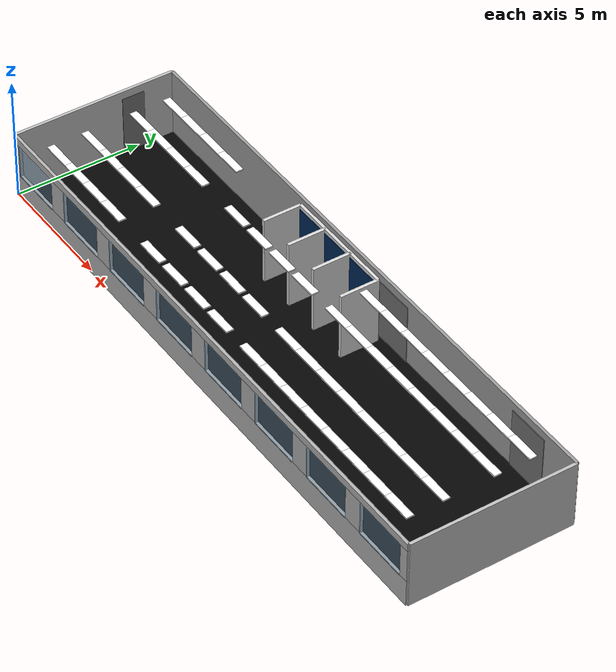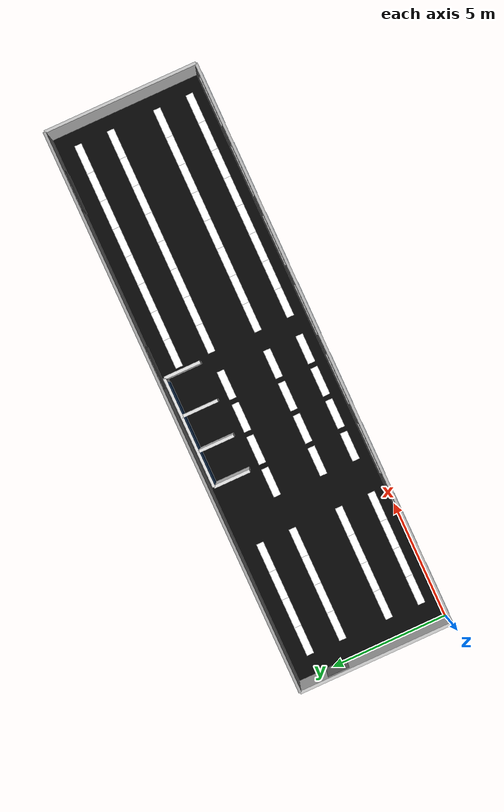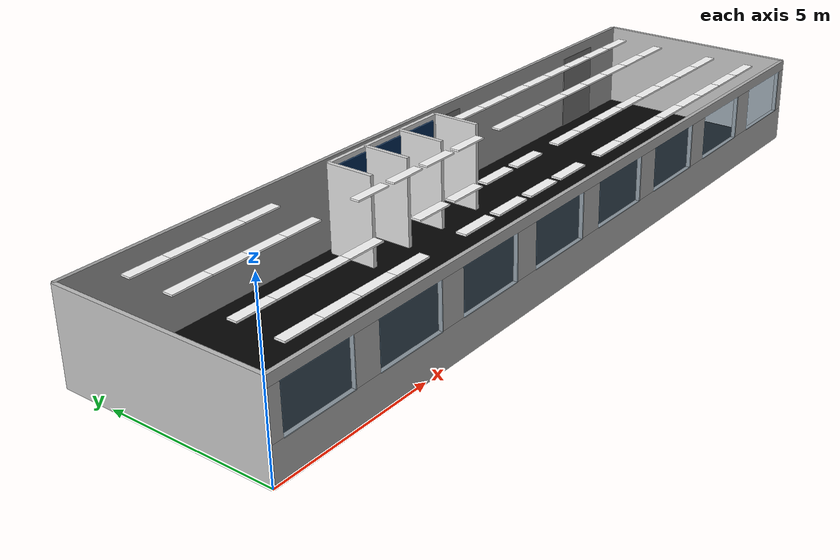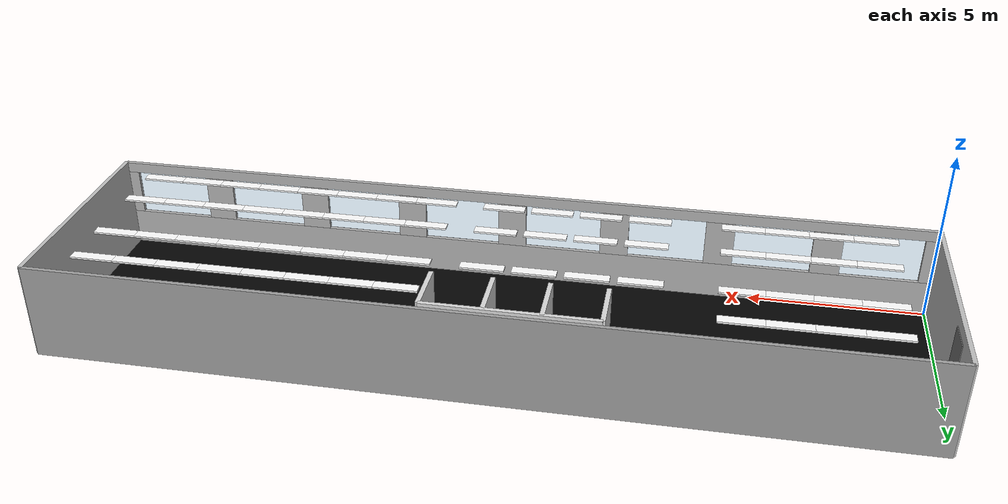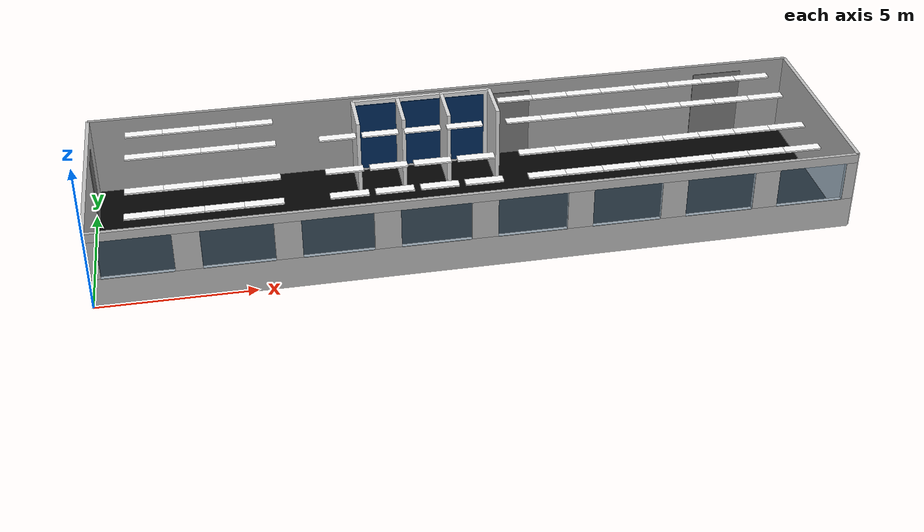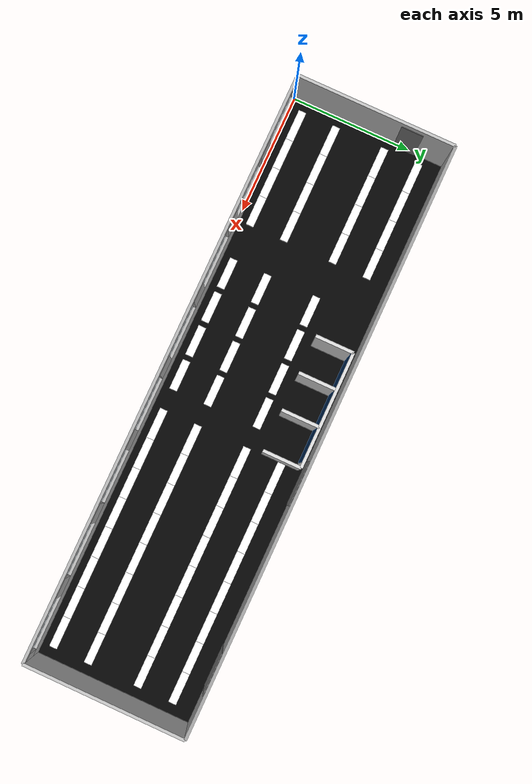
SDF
<?xml version="1.0" ?>
<sdf version="1.10">
  <world name="room_427_reusable">

    <plugin filename="gz-sim-physics-system"
            name="gz::sim::systems::Physics"/>
    <plugin filename="gz-sim-user-commands-system"
            name="gz::sim::systems::UserCommands"/>
    <plugin filename="gz-sim-scene-broadcaster-system"
            name="gz::sim::systems::SceneBroadcaster"/>

    <gravity>0 0 -9.8</gravity>

    <scene>
      <ambient>0.45 0.45 0.45 1</ambient>
      <background>0.75 0.78 0.82 1</background>
      <shadows>true</shadows>
      <grid>false</grid>
    </scene>

    <light name="main_light" type="directional">
      <pose>0 0 10 0 0 0</pose>
      <diffuse>0.6 0.6 0.6 1</diffuse>
      <specular>0.4 0.4 0.4 1</specular>
      <direction>-0.5 0.5 -1</direction>
    </light>

    <gui fullscreen="0">
      <camera name="user_camera">
        <pose>12 -10 8 0.7 0 1.15</pose>
      </camera>
    </gui>

    <include>
      <name>room_427_shell</name>
      <uri>model://moein_room_427_shell</uri>
      <pose>0 0 0 0 0 0</pose>
    </include>

    <include>
      <name>light_z1_r1_c1</name>
      <uri>model://moein_fluorescent_ceiling_light</uri>
      <pose>1.80 0.75 2.70 0 0 0</pose>
    </include>

    <include>
      <name>light_z1_r1_c2</name>
      <uri>model://moein_fluorescent_ceiling_light</uri>
      <pose>1.80 2.15 2.70 0 0 0</pose>
    </include>

    <include>
      <name>light_z1_r1_c3</name>
      <uri>model://moein_fluorescent_ceiling_light</uri>
      <pose>1.80 4.15 2.70 0 0 0</pose>
    </include>

    <include>
      <name>light_z1_r1_c4</name>
      <uri>model://moein_fluorescent_ceiling_light</uri>
      <pose>1.80 5.55 2.70 0 0 0</pose>
    </include>

    <include>
      <name>light_z1_r2_c1</name>
      <uri>model://moein_fluorescent_ceiling_light</uri>
      <pose>3.00 0.75 2.70 0 0 0</pose>
    </include>

    <include>
      <name>light_z1_r2_c2</name>
      <uri>model://moein_fluorescent_ceiling_light</uri>
      <pose>3.00 2.15 2.70 0 0 0</pose>
    </include>

    <include>
      <name>light_z1_r2_c3</name>
      <uri>model://moein_fluorescent_ceiling_light</uri>
      <pose>3.00 4.15 2.70 0 0 0</pose>
    </include>

    <include>
      <name>light_z1_r2_c4</name>
      <uri>model://moein_fluorescent_ceiling_light</uri>
      <pose>3.00 5.55 2.70 0 0 0</pose>
    </include>

    <include>
      <name>light_z1_r3_c1</name>
      <uri>model://moein_fluorescent_ceiling_light</uri>
      <pose>4.20 0.75 2.70 0 0 0</pose>
    </include>

    <include>
      <name>light_z1_r3_c2</name>
      <uri>model://moein_fluorescent_ceiling_light</uri>
      <pose>4.20 2.15 2.70 0 0 0</pose>
    </include>

    <include>
      <name>light_z1_r3_c3</name>
      <uri>model://moein_fluorescent_ceiling_light</uri>
      <pose>4.20 4.15 2.70 0 0 0</pose>
    </include>

    <include>
      <name>light_z1_r3_c4</name>
      <uri>model://moein_fluorescent_ceiling_light</uri>
      <pose>4.20 5.55 2.70 0 0 0</pose>
    </include>

    <include>
      <name>light_z1_r4_c1</name>
      <uri>model://moein_fluorescent_ceiling_light</uri>
      <pose>5.40 0.75 2.70 0 0 0</pose>
    </include>

    <include>
      <name>light_z1_r4_c2</name>
      <uri>model://moein_fluorescent_ceiling_light</uri>
      <pose>5.40 2.15 2.70 0 0 0</pose>
    </include>

    <include>
      <name>light_z1_r4_c3</name>
      <uri>model://moein_fluorescent_ceiling_light</uri>
      <pose>5.40 4.15 2.70 0 0 0</pose>
    </include>

    <include>
      <name>light_z1_r4_c4</name>
      <uri>model://moein_fluorescent_ceiling_light</uri>
      <pose>5.40 5.55 2.70 0 0 0</pose>
    </include>

    <include>
      <name>light_z2_r1_c1</name>
      <uri>model://moein_fluorescent_ceiling_light</uri>
      <pose>8.00 0.75 2.70 0 0 0</pose>
    </include>

    <include>
      <name>light_z2_r1_c2</name>
      <uri>model://moein_fluorescent_ceiling_light</uri>
      <pose>8.00 2.15 2.70 0 0 0</pose>
    </include>

    <include>
      <name>light_z2_r1_c3</name>
      <uri>model://moein_fluorescent_ceiling_light</uri>
      <pose>8.00 4.15 2.70 0 0 0</pose>
    </include>

    <include>
      <name>light_z2_r2_c1</name>
      <uri>model://moein_fluorescent_ceiling_light</uri>
      <pose>9.40 0.75 2.70 0 0 0</pose>
    </include>

    <include>
      <name>light_z2_r2_c2</name>
      <uri>model://moein_fluorescent_ceiling_light</uri>
      <pose>9.40 2.15 2.70 0 0 0</pose>
    </include>

    <include>
      <name>light_z2_r2_c3</name>
      <uri>model://moein_fluorescent_ceiling_light</uri>
      <pose>9.40 4.15 2.70 0 0 0</pose>
    </include>

    <include>
      <name>light_z2_r3_c1</name>
      <uri>model://moein_fluorescent_ceiling_light</uri>
      <pose>10.80 0.75 2.70 0 0 0</pose>
    </include>

    <include>
      <name>light_z2_r3_c2</name>
      <uri>model://moein_fluorescent_ceiling_light</uri>
      <pose>10.80 2.15 2.70 0 0 0</pose>
    </include>

    <include>
      <name>light_z2_r3_c3</name>
      <uri>model://moein_fluorescent_ceiling_light</uri>
      <pose>10.80 4.15 2.70 0 0 0</pose>
    </include>

    <include>
      <name>light_z2_r4_c1</name>
      <uri>model://moein_fluorescent_ceiling_light</uri>
      <pose>12.20 0.75 2.70 0 0 0</pose>
    </include>

    <include>
      <name>light_z2_r4_c2</name>
      <uri>model://moein_fluorescent_ceiling_light</uri>
      <pose>12.20 2.15 2.70 0 0 0</pose>
    </include>

    <include>
      <name>light_z2_r4_c3</name>
      <uri>model://moein_fluorescent_ceiling_light</uri>
      <pose>12.20 4.15 2.70 0 0 0</pose>
    </include>

    <include>
      <name>light_z3_r1_c1</name>
      <uri>model://moein_fluorescent_ceiling_light</uri>
      <pose>14.20 0.75 2.70 0 0 0</pose>
    </include>

    <include>
      <name>light_z3_r1_c2</name>
      <uri>model://moein_fluorescent_ceiling_light</uri>
      <pose>14.20 2.15 2.70 0 0 0</pose>
    </include>

    <include>
      <name>light_z3_r1_c3</name>
      <uri>model://moein_fluorescent_ceiling_light</uri>
      <pose>14.20 4.15 2.70 0 0 0</pose>
    </include>

    <include>
      <name>light_z3_r1_c4</name>
      <uri>model://moein_fluorescent_ceiling_light</uri>
      <pose>14.20 5.55 2.70 0 0 0</pose>
    </include>

    <include>
      <name>light_z3_r2_c1</name>
      <uri>model://moein_fluorescent_ceiling_light</uri>
      <pose>15.40 0.75 2.70 0 0 0</pose>
    </include>

    <include>
      <name>light_z3_r2_c2</name>
      <uri>model://moein_fluorescent_ceiling_light</uri>
      <pose>15.40 2.15 2.70 0 0 0</pose>
    </include>

    <include>
      <name>light_z3_r2_c3</name>
      <uri>model://moein_fluorescent_ceiling_light</uri>
      <pose>15.40 4.15 2.70 0 0 0</pose>
    </include>

    <include>
      <name>light_z3_r2_c4</name>
      <uri>model://moein_fluorescent_ceiling_light</uri>
      <pose>15.40 5.55 2.70 0 0 0</pose>
    </include>

    <include>
      <name>light_z3_r3_c1</name>
      <uri>model://moein_fluorescent_ceiling_light</uri>
      <pose>16.60 0.75 2.70 0 0 0</pose>
    </include>

    <include>
      <name>light_z3_r3_c2</name>
      <uri>model://moein_fluorescent_ceiling_light</uri>
      <pose>16.60 2.15 2.70 0 0 0</pose>
    </include>

    <include>
      <name>light_z3_r3_c3</name>
      <uri>model://moein_fluorescent_ceiling_light</uri>
      <pose>16.60 4.15 2.70 0 0 0</pose>
    </include>

    <include>
      <name>light_z3_r3_c4</name>
      <uri>model://moein_fluorescent_ceiling_light</uri>
      <pose>16.60 5.55 2.70 0 0 0</pose>
    </include>

    <include>
      <name>light_z3_r4_c1</name>
      <uri>model://moein_fluorescent_ceiling_light</uri>
      <pose>17.80 0.75 2.70 0 0 0</pose>
    </include>

    <include>
      <name>light_z3_r4_c2</name>
      <uri>model://moein_fluorescent_ceiling_light</uri>
      <pose>17.80 2.15 2.70 0 0 0</pose>
    </include>

    <include>
      <name>light_z3_r4_c3</name>
      <uri>model://moein_fluorescent_ceiling_light</uri>
      <pose>17.80 4.15 2.70 0 0 0</pose>
    </include>

    <include>
      <name>light_z3_r4_c4</name>
      <uri>model://moein_fluorescent_ceiling_light</uri>
      <pose>17.80 5.55 2.70 0 0 0</pose>
    </include>

    <include>
      <name>light_z3_r5_c1</name>
      <uri>model://moein_fluorescent_ceiling_light</uri>
      <pose>19.00 0.75 2.70 0 0 0</pose>
    </include>

    <include>
      <name>light_z3_r5_c2</name>
      <uri>model://moein_fluorescent_ceiling_light</uri>
      <pose>19.00 2.15 2.70 0 0 0</pose>
    </include>

    <include>
      <name>light_z3_r5_c3</name>
      <uri>model://moein_fluorescent_ceiling_light</uri>
      <pose>19.00 4.15 2.70 0 0 0</pose>
    </include>

    <include>
      <name>light_z3_r5_c4</name>
      <uri>model://moein_fluorescent_ceiling_light</uri>
      <pose>19.00 5.55 2.70 0 0 0</pose>
    </include>

    <include>
      <name>light_z3_r6_c1</name>
      <uri>model://moein_fluorescent_ceiling_light</uri>
      <pose>20.20 0.75 2.70 0 0 0</pose>
    </include>

    <include>
      <name>light_z3_r6_c2</name>
      <uri>model://moein_fluorescent_ceiling_light</uri>
      <pose>20.20 2.15 2.70 0 0 0</pose>
    </include>

    <include>
      <name>light_z3_r6_c3</name>
      <uri>model://moein_fluorescent_ceiling_light</uri>
      <pose>20.20 4.15 2.70 0 0 0</pose>
    </include>

    <include>
      <name>light_z3_r6_c4</name>
      <uri>model://moein_fluorescent_ceiling_light</uri>
      <pose>20.20 5.55 2.70 0 0 0</pose>
    </include>

    <include>
      <name>light_z3_r7_c1</name>
      <uri>model://moein_fluorescent_ceiling_light</uri>
      <pose>21.40 0.75 2.70 0 0 0</pose>
    </include>

    <include>
      <name>light_z3_r7_c2</name>
      <uri>model://moein_fluorescent_ceiling_light</uri>
      <pose>21.40 2.15 2.70 0 0 0</pose>
    </include>

    <include>
      <name>light_z3_r7_c3</name>
      <uri>model://moein_fluorescent_ceiling_light</uri>
      <pose>21.40 4.15 2.70 0 0 0</pose>
    </include>

    <include>
      <name>light_z3_r7_c4</name>
      <uri>model://moein_fluorescent_ceiling_light</uri>
      <pose>21.40 5.55 2.70 0 0 0</pose>
    </include>

    <include>
      <name>light_z3_r8_c1</name>
      <uri>model://moein_fluorescent_ceiling_light</uri>
      <pose>22.60 0.75 2.70 0 0 0</pose>
    </include>

    <include>
      <name>light_z3_r8_c2</name>
      <uri>model://moein_fluorescent_ceiling_light</uri>
      <pose>22.60 2.15 2.70 0 0 0</pose>
    </include>

    <include>
      <name>light_z3_r8_c3</name>
      <uri>model://moein_fluorescent_ceiling_light</uri>
      <pose>22.60 4.15 2.70 0 0 0</pose>
    </include>

    <include>
      <name>light_z3_r8_c4</name>
      <uri>model://moein_fluorescent_ceiling_light</uri>
      <pose>22.60 5.55 2.70 0 0 0</pose>
    </include>

  </world>
</sdf>

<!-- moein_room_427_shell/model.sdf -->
<sdf version="1.10">
  <model name="moein_room_427_shell">
    <static>true</static>
    <model name="room_427_floor">
      <static>true</static>
      <pose>12.1 3.27 0 0 0 0</pose>
      <link name="floor_link">
        <collision name="floor_collision">
          <geometry>
            <box>
              <size>24.2 6.54 0.03</size>
            </box>
          </geometry>
        </collision>
        <visual name="floor_visual">
          <geometry>
            <box>
              <size>24.2 6.54 0.03</size>
            </box>
          </geometry>
          <material>
            <ambient>0.01 0.01 0.01 1</ambient>
            <diffuse>0.02 0.02 0.02 1</diffuse>
            <specular>0.8 0.8 0.8 1</specular>
            <pbr>
              <metal>
                <metalness>0.0</metalness>
                <roughness>0.18</roughness>
              </metal>
            </pbr>
          </material>
        </visual>
      </link>
    </model>
    <model name="back_wall_D_C">
      <static>true</static>
      <pose>12.1 6.54 1.375 0 0 0</pose>
      <link name="link">
        <collision name="collision">
          <geometry>
            <box>
              <size>24.2 0.12 2.75</size>
            </box>
          </geometry>
        </collision>
        <visual name="visual">
          <geometry>
            <box>
              <size>24.2 0.12 2.75</size>
            </box>
          </geometry>
          <material>
            <ambient>0.62 0.62 0.62 1</ambient>
            <diffuse>0.62 0.62 0.62 1</diffuse>
          </material>
        </visual>
      </link>
    </model>
    <model name="wall_A_C_solid_no_door">
      <static>true</static>
      <pose>24.2 3.27 1.375 0 0 0</pose>
      <link name="link">
        <collision name="collision">
          <geometry>
            <box>
              <size>0.12 6.54 2.75</size>
            </box>
          </geometry>
        </collision>
        <visual name="visual">
          <geometry>
            <box>
              <size>0.12 6.54 2.75</size>
            </box>
          </geometry>
          <material>
            <ambient>0.75 0.75 0.75 1</ambient>
            <diffuse>0.75 0.75 0.75 1</diffuse>
          </material>
        </visual>
      </link>
    </model>
    <model name="B_D_wall_solid_with_door3_panel">
      <static>true</static>
      <pose>0 3.27 1.375 0 0 0</pose>
      <link name="wall_B_D_solid">
        <collision name="collision">
          <geometry>
            <box>
              <size>0.12 6.54 2.75</size>
            </box>
          </geometry>
        </collision>
        <visual name="visual">
          <geometry>
            <box>
              <size>0.12 6.54 2.75</size>
            </box>
          </geometry>
          <material>
            <ambient>0.75 0.75 0.75 1</ambient>
            <diffuse>0.75 0.75 0.75 1</diffuse>
          </material>
        </visual>
      </link>
      <link name="door_3_panel_near_D">
        <pose>0.065 1.5682 -0.16 0 0 0</pose>
        <visual name="visual">
          <geometry>
            <box>
              <size>0.04 0.9144 2.43</size>
            </box>
          </geometry>
          <material>
            <ambient>0.45 0.45 0.45 1</ambient>
            <diffuse>0.45 0.45 0.45 1</diffuse>
          </material>
        </visual>
      </link>
    </model>
    <model name="window_wall_lower_A_B">
      <static>true</static>
      <pose>12.1 0 0.545 0 0 0</pose>
      <link name="link">
        <collision name="collision">
          <geometry>
            <box>
              <size>24.2 0.12 1.09</size>
            </box>
          </geometry>
        </collision>
        <visual name="visual">
          <geometry>
            <box>
              <size>24.2 0.12 1.09</size>
            </box>
          </geometry>
          <material>
            <ambient>0.7 0.7 0.7 1</ambient>
            <diffuse>0.7 0.7 0.7 1</diffuse>
          </material>
        </visual>
      </link>
    </model>
    <model name="window_wall_top_A_B">
      <static>true</static>
      <pose>12.1 0 2.5925 0 0 0</pose>
      <link name="link">
        <collision name="collision">
          <geometry>
            <box>
              <size>24.2 0.12 0.305</size>
            </box>
          </geometry>
        </collision>
        <visual name="visual">
          <geometry>
            <box>
              <size>24.2 0.12 0.305</size>
            </box>
          </geometry>
          <material>
            <ambient>0.7 0.7 0.7 1</ambient>
            <diffuse>0.7 0.7 0.7 1</diffuse>
          </material>
        </visual>
      </link>
    </model>
    <model name="window_wall_vertical_pieces">
      <static>true</static>
      <link name="window_side_left">
        <pose>0.1725 0 1.765 0 0 0</pose>
        <collision name="collision">
          <geometry>
            <box>
              <size>0.345 0.12 1.35</size>
            </box>
          </geometry>
        </collision>
        <visual name="visual">
          <geometry>
            <box>
              <size>0.345 0.12 1.35</size>
            </box>
          </geometry>
          <material>
            <ambient>0.7 0.7 0.7 1</ambient>
            <diffuse>0.7 0.7 0.7 1</diffuse>
          </material>
        </visual>
      </link>
      <link name="window_gap_1">
        <pose>2.97 0 1.765 0 0 0</pose>
        <collision name="collision">
          <geometry>
            <box>
              <size>0.83 0.12 1.35</size>
            </box>
          </geometry>
        </collision>
        <visual name="visual">
          <geometry>
            <box>
              <size>0.83 0.12 1.35</size>
            </box>
          </geometry>
          <material>
            <ambient>0.7 0.7 0.7 1</ambient>
            <diffuse>0.7 0.7 0.7 1</diffuse>
          </material>
        </visual>
      </link>
      <link name="window_gap_2">
        <pose>6.01 0 1.765 0 0 0</pose>
        <collision name="collision">
          <geometry>
            <box>
              <size>0.83 0.12 1.35</size>
            </box>
          </geometry>
        </collision>
        <visual name="visual">
          <geometry>
            <box>
              <size>0.83 0.12 1.35</size>
            </box>
          </geometry>
          <material>
            <ambient>0.7 0.7 0.7 1</ambient>
            <diffuse>0.7 0.7 0.7 1</diffuse>
          </material>
        </visual>
      </link>
      <link name="window_gap_3">
        <pose>9.05 0 1.765 0 0 0</pose>
        <collision name="collision">
          <geometry>
            <box>
              <size>0.83 0.12 1.35</size>
            </box>
          </geometry>
        </collision>
        <visual name="visual">
          <geometry>
            <box>
              <size>0.83 0.12 1.35</size>
            </box>
          </geometry>
          <material>
            <ambient>0.7 0.7 0.7 1</ambient>
            <diffuse>0.7 0.7 0.7 1</diffuse>
          </material>
        </visual>
      </link>
      <link name="window_gap_4">
        <pose>12.09 0 1.765 0 0 0</pose>
        <collision name="collision">
          <geometry>
            <box>
              <size>0.83 0.12 1.35</size>
            </box>
          </geometry>
        </collision>
        <visual name="visual">
          <geometry>
            <box>
              <size>0.83 0.12 1.35</size>
            </box>
          </geometry>
          <material>
            <ambient>0.7 0.7 0.7 1</ambient>
            <diffuse>0.7 0.7 0.7 1</diffuse>
          </material>
        </visual>
      </link>
      <link name="window_gap_5">
        <pose>15.13 0 1.765 0 0 0</pose>
        <collision name="collision">
          <geometry>
            <box>
              <size>0.83 0.12 1.35</size>
            </box>
          </geometry>
        </collision>
        <visual name="visual">
          <geometry>
            <box>
              <size>0.83 0.12 1.35</size>
            </box>
          </geometry>
          <material>
            <ambient>0.7 0.7 0.7 1</ambient>
            <diffuse>0.7 0.7 0.7 1</diffuse>
          </material>
        </visual>
      </link>
      <link name="window_gap_6">
        <pose>18.17 0 1.765 0 0 0</pose>
        <collision name="collision">
          <geometry>
            <box>
              <size>0.83 0.12 1.35</size>
            </box>
          </geometry>
        </collision>
        <visual name="visual">
          <geometry>
            <box>
              <size>0.83 0.12 1.35</size>
            </box>
          </geometry>
          <material>
            <ambient>0.7 0.7 0.7 1</ambient>
            <diffuse>0.7 0.7 0.7 1</diffuse>
          </material>
        </visual>
      </link>
      <link name="window_gap_7">
        <pose>21.21 0 1.765 0 0 0</pose>
        <collision name="collision">
          <geometry>
            <box>
              <size>0.83 0.12 1.35</size>
            </box>
          </geometry>
        </collision>
        <visual name="visual">
          <geometry>
            <box>
              <size>0.83 0.12 1.35</size>
            </box>
          </geometry>
          <material>
            <ambient>0.7 0.7 0.7 1</ambient>
            <diffuse>0.7 0.7 0.7 1</diffuse>
          </material>
        </visual>
      </link>
      <link name="window_side_right">
        <pose>24.0175 0 1.765 0 0 0</pose>
        <collision name="collision">
          <geometry>
            <box>
              <size>0.365 0.12 1.35</size>
            </box>
          </geometry>
        </collision>
        <visual name="visual">
          <geometry>
            <box>
              <size>0.365 0.12 1.35</size>
            </box>
          </geometry>
          <material>
            <ambient>0.7 0.7 0.7 1</ambient>
            <diffuse>0.7 0.7 0.7 1</diffuse>
          </material>
        </visual>
      </link>
    </model>
    <model name="window_glass_panes">
      <static>true</static>
      <link name="window_1">
        <pose>1.45 -0.07 1.765 0 0 0</pose>
        <visual name="visual">
          <geometry>
            <box>
              <size>2.21 0.03 1.35</size>
            </box>
          </geometry>
          <material>
            <ambient>0.55 0.75 0.9 0.35</ambient>
            <diffuse>0.55 0.75 0.9 0.35</diffuse>
            <specular>0.8 0.8 0.8 1</specular>
          </material>
          <transparency>0.55</transparency>
        </visual>
      </link>
      <link name="window_2">
        <pose>4.49 -0.07 1.765 0 0 0</pose>
        <visual name="visual">
          <geometry>
            <box>
              <size>2.21 0.03 1.35</size>
            </box>
          </geometry>
          <material>
            <ambient>0.55 0.75 0.9 0.35</ambient>
            <diffuse>0.55 0.75 0.9 0.35</diffuse>
            <specular>0.8 0.8 0.8 1</specular>
          </material>
          <transparency>0.55</transparency>
        </visual>
      </link>
      <link name="window_3">
        <pose>7.53 -0.07 1.765 0 0 0</pose>
        <visual name="visual">
          <geometry>
            <box>
              <size>2.21 0.03 1.35</size>
            </box>
          </geometry>
          <material>
            <ambient>0.55 0.75 0.9 0.35</ambient>
            <diffuse>0.55 0.75 0.9 0.35</diffuse>
            <specular>0.8 0.8 0.8 1</specular>
          </material>
          <transparency>0.55</transparency>
        </visual>
      </link>
      <link name="window_4">
        <pose>10.57 -0.07 1.765 0 0 0</pose>
        <visual name="visual">
          <geometry>
            <box>
              <size>2.21 0.03 1.35</size>
            </box>
          </geometry>
          <material>
            <ambient>0.55 0.75 0.9 0.35</ambient>
            <diffuse>0.55 0.75 0.9 0.35</diffuse>
            <specular>0.8 0.8 0.8 1</specular>
          </material>
          <transparency>0.55</transparency>
        </visual>
      </link>
      <link name="window_5">
        <pose>13.61 -0.07 1.765 0 0 0</pose>
        <visual name="visual">
          <geometry>
            <box>
              <size>2.21 0.03 1.35</size>
            </box>
          </geometry>
          <material>
            <ambient>0.55 0.75 0.9 0.35</ambient>
            <diffuse>0.55 0.75 0.9 0.35</diffuse>
            <specular>0.8 0.8 0.8 1</specular>
          </material>
          <transparency>0.55</transparency>
        </visual>
      </link>
      <link name="window_6">
        <pose>16.65 -0.07 1.765 0 0 0</pose>
        <visual name="visual">
          <geometry>
            <box>
              <size>2.21 0.03 1.35</size>
            </box>
          </geometry>
          <material>
            <ambient>0.55 0.75 0.9 0.35</ambient>
            <diffuse>0.55 0.75 0.9 0.35</diffuse>
            <specular>0.8 0.8 0.8 1</specular>
          </material>
          <transparency>0.55</transparency>
        </visual>
      </link>
      <link name="window_7">
        <pose>19.69 -0.07 1.765 0 0 0</pose>
        <visual name="visual">
          <geometry>
            <box>
              <size>2.21 0.03 1.35</size>
            </box>
          </geometry>
          <material>
            <ambient>0.55 0.75 0.9 0.35</ambient>
            <diffuse>0.55 0.75 0.9 0.35</diffuse>
            <specular>0.8 0.8 0.8 1</specular>
          </material>
          <transparency>0.55</transparency>
        </visual>
      </link>
      <link name="window_8">
        <pose>22.73 -0.07 1.765 0 0 0</pose>
        <visual name="visual">
          <geometry>
            <box>
              <size>2.21 0.03 1.35</size>
            </box>
          </geometry>
          <material>
            <ambient>0.55 0.75 0.9 0.35</ambient>
            <diffuse>0.55 0.75 0.9 0.35</diffuse>
            <specular>0.8 0.8 0.8 1</specular>
          </material>
          <transparency>0.55</transparency>
        </visual>
      </link>
    </model>
    <model name="doors_and_connected_boxes_on_D_C_wall">
      <static>true</static>
      <link name="door_1_panel_D_C_wall">
        <pose>21.7 6.47 1.215 0 0 0</pose>
        <visual name="visual">
          <geometry>
            <box>
              <size>1.72 0.04 2.43</size>
            </box>
          </geometry>
          <material>
            <ambient>0.45 0.45 0.45 1</ambient>
            <diffuse>0.45 0.45 0.45 1</diffuse>
          </material>
        </visual>
      </link>
      <link name="door_2_panel_D_C_wall">
        <pose>14.0 6.47 1.215 0 0 0</pose>
        <visual name="visual">
          <geometry>
            <box>
              <size>1.83 0.04 2.43</size>
            </box>
          </geometry>
          <material>
            <ambient>0.45 0.45 0.45 1</ambient>
            <diffuse>0.45 0.45 0.45 1</diffuse>
          </material>
        </visual>
      </link>
      <link name="boxes_back_wall">
        <pose>11.1 6.27 1.375 0 0 0</pose>
        <collision name="collision">
          <geometry>
            <box>
              <size>4.699 0.12 2.75</size>
            </box>
          </geometry>
        </collision>
        <visual name="visual">
          <geometry>
            <box>
              <size>4.699 0.12 2.75</size>
            </box>
          </geometry>
          <material>
            <ambient>0.85 0.85 0.85 1</ambient>
            <diffuse>0.85 0.85 0.85 1</diffuse>
          </material>
        </visual>
      </link>
      <link name="boxes_left_side">
        <pose>8.75 5.50 1.375 0 0 0</pose>
        <collision name="collision">
          <geometry>
            <box>
              <size>0.127 1.549 2.75</size>
            </box>
          </geometry>
        </collision>
        <visual name="visual">
          <geometry>
            <box>
              <size>0.127 1.549 2.75</size>
            </box>
          </geometry>
          <material>
            <ambient>0.85 0.85 0.85 1</ambient>
            <diffuse>0.85 0.85 0.85 1</diffuse>
          </material>
        </visual>
      </link>
      <link name="boxes_divider_1">
        <pose>10.27 5.50 1.375 0 0 0</pose>
        <collision name="collision">
          <geometry>
            <box>
              <size>0.127 1.549 2.75</size>
            </box>
          </geometry>
        </collision>
        <visual name="visual">
          <geometry>
            <box>
              <size>0.127 1.549 2.75</size>
            </box>
          </geometry>
          <material>
            <ambient>0.85 0.85 0.85 1</ambient>
            <diffuse>0.85 0.85 0.85 1</diffuse>
          </material>
        </visual>
      </link>
      <link name="boxes_divider_2">
        <pose>11.79 5.50 1.375 0 0 0</pose>
        <collision name="collision">
          <geometry>
            <box>
              <size>0.127 1.549 2.75</size>
            </box>
          </geometry>
        </collision>
        <visual name="visual">
          <geometry>
            <box>
              <size>0.127 1.549 2.75</size>
            </box>
          </geometry>
          <material>
            <ambient>0.85 0.85 0.85 1</ambient>
            <diffuse>0.85 0.85 0.85 1</diffuse>
          </material>
        </visual>
      </link>
      <link name="boxes_right_side">
        <pose>13.45 5.50 1.375 0 0 0</pose>
        <collision name="collision">
          <geometry>
            <box>
              <size>0.127 1.549 2.75</size>
            </box>
          </geometry>
        </collision>
        <visual name="visual">
          <geometry>
            <box>
              <size>0.127 1.549 2.75</size>
            </box>
          </geometry>
          <material>
            <ambient>0.85 0.85 0.85 1</ambient>
            <diffuse>0.85 0.85 0.85 1</diffuse>
          </material>
        </visual>
      </link>
      <link name="box_1_blue_panel">
        <pose>9.51 6.20 1.35 0 0 0</pose>
        <visual name="visual">
          <geometry>
            <box>
              <size>1.397 0.03 2.50</size>
            </box>
          </geometry>
          <material>
            <ambient>0.0 0.16 0.35 1</ambient>
            <diffuse>0.0 0.16 0.35 1</diffuse>
          </material>
        </visual>
      </link>
      <link name="box_2_blue_panel">
        <pose>11.03 6.20 1.35 0 0 0</pose>
        <visual name="visual">
          <geometry>
            <box>
              <size>1.397 0.03 2.50</size>
            </box>
          </geometry>
          <material>
            <ambient>0.0 0.16 0.35 1</ambient>
            <diffuse>0.0 0.16 0.35 1</diffuse>
          </material>
        </visual>
      </link>
      <link name="box_3_blue_panel">
        <pose>12.55 6.20 1.35 0 0 0</pose>
        <visual name="visual">
          <geometry>
            <box>
              <size>1.397 0.03 2.50</size>
            </box>
          </geometry>
          <material>
            <ambient>0.0 0.16 0.35 1</ambient>
            <diffuse>0.0 0.16 0.35 1</diffuse>
          </material>
        </visual>
      </link>
    </model>
  </model>
</sdf>

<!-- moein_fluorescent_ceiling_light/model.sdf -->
<sdf version="1.10">
  <model name="moein_fluorescent_ceiling_light">
    <static>true</static>

    <link name="panel_link">
      <pose>0 0 0 0 0 0</pose>

      <collision name="panel_collision">
        <geometry>
          <box>
            <size>1.2 0.3 0.05</size>
          </box>
        </geometry>
      </collision>

      <visual name="panel_visual">
        <pose>0 0 -0.025 0 0 0</pose>
        <geometry>
          <box>
            <size>1.2 0.3 0.05</size>
          </box>
        </geometry>
        <material>
          <ambient>0.2 0.2 0.2 1</ambient>
          <diffuse>1 1 1 1</diffuse>
          <emissive>0.8 0.8 0.7 1</emissive>
          <specular>0.2 0.2 0.2 1</specular>
        </material>
      </visual>

      <light name="panel_light" type="spot">
        <pose>0 0 -0.03 0 0 0</pose>
        <diffuse>1.0 0.98 0.9 1</diffuse>
        <specular>0.5 0.5 0.5 1</specular>
        <attenuation>
          <range>10</range>
          <constant>0.8</constant>
          <linear>0.2</linear>
          <quadratic>0.02</quadratic>
        </attenuation>
        <direction>0 0 -1</direction>
        <spot>
          <inner_angle>0.9</inner_angle>
          <outer_angle>1.2</outer_angle>
          <falloff>0.5</falloff>
        </spot>
        <cast_shadows>true</cast_shadows>
      </light>
    </link>
  </model>
</sdf>
